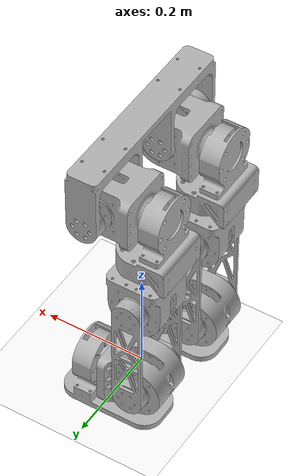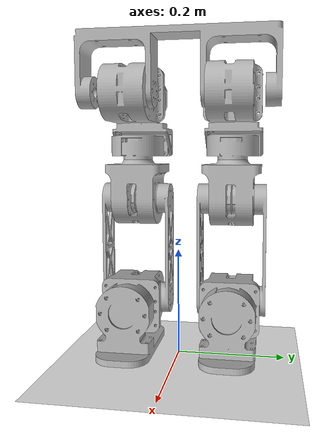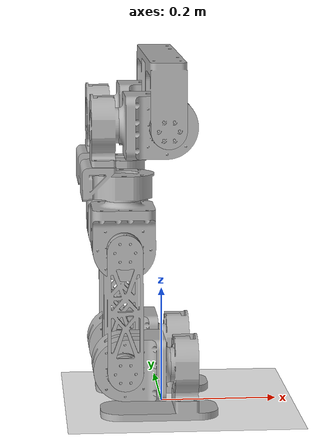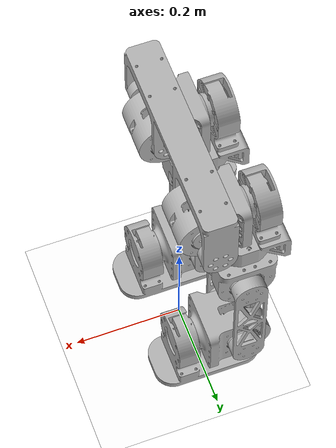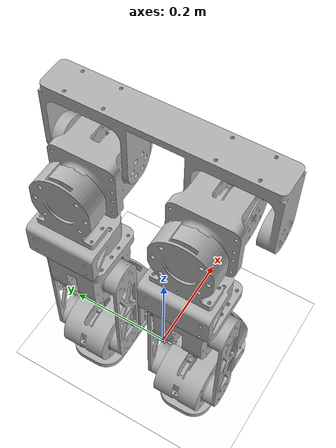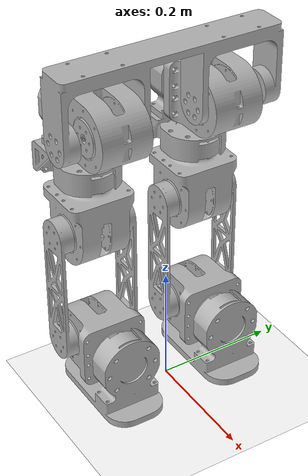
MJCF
<mujoco model="nemo scene">
  <include file="nemo4b_shift.xml"/>

  <statistic center="1 -0.8 1.1" extent=".3"/>

  <visual>
    <headlight diffuse="0.6 0.6 0.6" ambient="0.1 0.1 0.1" specular="0.9 0.9 0.9"/>
    <rgba haze="0.15 0.25 0.35 1"/>
    <global azimuth="140" elevation="-20"/>
  </visual>

  <asset>
    <texture type="skybox" builtin="gradient" rgb1="1 1 1" rgb2="1 1 1" width="800" height="800"/>
    <texture type="2d" name="groundplane" builtin="checker" mark="edge" rgb1="1 1 1" rgb2="1 1 1"
      markrgb="0 0 0" width="300" height="300"/>
    <material name="groundplane" texture="groundplane" texuniform="true" texrepeat="5 5" reflectance="0"/>
  </asset>

  <worldbody>
    <geom conaffinity="1" contype="1" condim="3" friction="1 .1 .1" name="floor" pos="0 0 0" size="40 40 0.125" type="plane" material="groundplane" rgba="0.5 0.5 0.5 1.0"/>
  </worldbody>
</mujoco>

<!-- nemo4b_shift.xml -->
<mujoco model="nemo4b">
<compiler angle="radian" meshdir="assets" autolimits="true" />

  <option timestep="0.0035" iterations="8" ls_iterations="4">
    <flag eulerdamp="disable" />
  </option>

  <custom>
        <numeric data="2500" name="constraint_limit_stiffness" />
        <numeric data="27000" name="constraint_stiffness" />
        <numeric data="30" name="constraint_ang_damping" />
        <numeric data="80" name="constraint_vel_damping" />
        <numeric data="-0.05" name="ang_damping" />
        <numeric data="0.5" name="joint_scale_pos" />
        <numeric data="0.1" name="joint_scale_ang" />
        <numeric data="0" name="spring_mass_scale" />
        <numeric data="1" name="spring_inertia_scale" />
        <numeric data="20" name="matrix_inv_iterations" />
        <numeric data="15" name="solver_maxls" />
  </custom>

  <visual>
    <global ellipsoidinertia="true" />
  </visual>
  <default>
    <geom contype="0" conaffinity="0" condim="3" solref="0.005 1" />
    <equality solref="0.005 1" />
    <default class="robot">
      <site rgba="1 0 0 1" size="0.01" group="5" />
      <default class="visual">
        <geom group="2" type="mesh" contype="0" conaffinity="0" density="0" material="metallic" />
      </default>
      <default class="collision">
        <geom conaffinity="1" contype="1" group="3" rgba="0.5 0.5 0.5 1" material="metallic" />
      </default>
    </default>
  </default>

  <asset>
    <material name="metallic" rgba="0.7 0.7 0.7 1" />
    <material name="black" rgba="0.2 0.2 0.2 1" />
    <material name="transparent" rgba="0 0 0 0" />

    <mesh file="pelvis.stl" />
    <mesh name="l_hip_pitch" file="l_hip_pitch.stl" />
    <mesh name="l_hip_roll" file="l_hip_roll.stl" />
    <mesh name="l_hip_yaw" file="l_hip_yaw.stl" />
    <mesh name="l_knee" file="l_knee.stl" />
    <mesh name="l_foot_pitch" file="l_foot_pitch.stl" />
    <mesh name="l_foot_roll" file="l_foot_roll.stl" />

    <mesh name="r_hip_pitch" file="l_hip_pitch.stl" scale="1 -1 1" />
    <mesh name="r_hip_roll" file="l_hip_roll.stl" scale="1 -1 1" />
    <mesh name="r_hip_yaw" file="l_hip_yaw.stl" scale="1 -1 1" />
    <mesh name="r_knee" file="l_knee.stl" scale="1 -1 1" />
    <mesh name="r_foot_pitch" file="l_foot_pitch.stl" scale="1 -1 1" />
    <mesh name="r_foot_roll" file="l_foot_roll.stl" scale="1 -1 1" />

  </asset>
<worldbody>
  <light name="spotlight" mode="targetbodycom" target="pelvis" pos="0 -6 4" cutoff="30" />
  <body name="pelvis" pos="0.0 0.0 0.6088" childclass="robot">
    <inertial pos="0.0 0.0 0.2" mass="5.11537484" fullinertia="0.03 0.03 0.03 0.0 0.0 0.0" />
    <freejoint name="floating_base" />
    <geom type="mesh" class="visual" mesh="pelvis" />
    <body name="l_hip_pitch" pos="0.0 0.0965 -0.112">
      <inertial pos="-0.01821923 -0.0 -3.205e-05" mass="1.8670971" fullinertia="0.00265583 0.00363357 0.00358009 -2e-07 -1.09e-06 -0.0" />
      <joint armature="0.005" damping="2" frictionloss="0.1" actuatorfrcrange="-47.4 47.4" name="l_hip_pitch" axis="0 1 0" range="-1.3 1.3" />
      <geom type="mesh" class="visual" mesh="l_hip_pitch" />
      <body name="l_hip_roll" pos="-0.07875 0.0 0.0">
        <inertial pos="-0.01740501 1.764e-05 -0.05845559" mass="2.00459959" fullinertia="0.0064706 0.00633136 0.00303949 4.7e-07 -0.00070962 9e-07" />
        <joint armature="0.005" damping="2" frictionloss="0.1" actuatorfrcrange="-23.7 23.7" name="l_hip_roll" axis="1 0 0" range="-0.4 1.5" />
        <geom type="mesh" class="visual" mesh="l_hip_roll" />
        <body name="l_hip_yaw" pos="0.00715 0.0 -0.1263">
          <inertial pos="3.205e-05 -0.0 -0.06053076999999999" mass="1.8670971" fullinertia="0.00358009 0.00363357 0.00265583 -0.0 -1.09e-06 -2e-07" />
          <joint armature="0.005" damping="2" frictionloss="0.1" actuatorfrcrange="-23.7 23.7" name="l_hip_yaw" axis="0 0 1" range="-1.0 1.0" />
          <geom type="mesh" class="visual" mesh="l_hip_yaw" />
          <body name="l_knee" pos="0.0 0.0 -0.07875">
            <inertial pos="0.0 5e-05 -0.10289321" mass="0.58007416" fullinertia="0.0070466 0.00513742 0.00225232 -0.0 0.0 -0.0" />
            <joint armature="0.005" damping="2" frictionloss="0.1" actuatorfrcrange="-47.4 47.4" name="l_knee" axis="0 1 0" range="-2 2" />
            <geom type="mesh" class="visual" mesh="l_knee" />
            <body name="l_foot_pitch" pos="0.0 0.0 -0.206">
              <inertial pos="0.01821923 -0.0 -3.205e-05" mass="1.8670971" fullinertia="0.00265583 0.00363357 0.00358009 -2e-07 1.09e-06 -0.0" />
              <joint armature="0.005" damping="2" frictionloss="0.1" actuatorfrcrange="-47.4 47.4" name="l_foot_pitch" axis="0 1 0" range="-2.0 2.0" />
              <geom type="mesh" class="visual" mesh="l_foot_pitch" />
              <body name="l_foot_roll" pos="0.07875 0.0 0.0">
                <inertial pos="0.00757956 1.139e-05 -0.03942379" mass="1.5526793" fullinertia="0.00385478 0.0054167 0.00391016 5.4e-07 0.0010808 3e-07" />
                <joint armature="0.005" damping="2" frictionloss="0.1" actuatorfrcrange="-23.7 23.7" name="l_foot_roll" axis="1 0 0" range="-1 1" />
                <geom type="mesh" class="visual" mesh="l_foot_roll" />
                <geom class="collision" name="left_foot" pos="-0.0187 0 -0.07975" size="0.1 0.0505 0.006" type="box" />
                <site name="left_foot_p1" pos="0.05 0.0 -0.08275" />
                <site name="left_foot_p2" pos="-0.05 0.0 -0.08275" />
                <site name="left_foot_p3" pos="0.0 0.05 -0.08275" />
              </body>
            </body>
          </body>
        </body>
      </body>
    </body>

    <body name="r_hip_pitch" pos="0.0 -0.0965 -0.112">
      <inertial pos="-0.01821923 -0.0 -3.205e-05" mass="1.8670971" fullinertia="0.00265583 0.00363357 0.00358009 -2e-07 -1.09e-06 -0.0" />
      <joint armature="0.005" damping="2" frictionloss="0.1" actuatorfrcrange="-47.4 47.4" name="r_hip_pitch" axis="0 1 0" range="-1.3 1.3" />
      <geom type="mesh" class="visual" mesh="r_hip_pitch" />
      <body name="r_hip_roll" pos="-0.07875 -0.0 0.0">
        <inertial pos="-0.01740501 1.764e-05 -0.05845559" mass="2.00459959" fullinertia="0.0064706 0.00633136 0.00303949 4.7e-07 -0.00070962 9e-07" />
        <joint armature="0.005" damping="2" frictionloss="0.1" actuatorfrcrange="-23.7 23.7" name="r_hip_roll" axis="1 0 0" range="-1.5 0.40" />
        <geom type="mesh" class="visual" mesh="r_hip_roll" />
        <body name="r_hip_yaw" pos="0.00715 -0.0 -0.1263">
          <inertial pos="3.205e-05 -0.0 -0.06053076999999999" mass="1.8670971" fullinertia="0.00358009 0.00363357 0.00265583 -0.0 -1.09e-06 -2e-07" />
          <joint armature="0.005" damping="2" frictionloss="0.1" actuatorfrcrange="-23.7 23.7" name="r_hip_yaw" axis="0 0 1" range="-1.0 1.0" />
          <geom type="mesh" class="visual" mesh="r_hip_yaw" />
          <body name="r_knee" pos="0.0 -0.0 -0.07875">
            <inertial pos="0.0 5e-05 -0.10289321" mass="0.58007416" fullinertia="0.0070466 0.00513742 0.00225232 -0.0 0.0 -0.0" />
            <joint armature="0.005" damping="2" frictionloss="0.1" actuatorfrcrange="-47.4 47.4" name="r_knee" axis="0 1 0" range="-2 2" />
            <geom type="mesh" class="visual" mesh="l_knee" />
            <body name="r_foot_pitch" pos="0.0 -0.0 -0.206">
              <inertial pos="0.01821923 -0.0 -3.205e-05" mass="1.8670971" fullinertia="0.00265583 0.00363357 0.00358009 -2e-07 1.09e-06 -0.0" />
              <joint armature="0.005" damping="2" frictionloss="0.1" actuatorfrcrange="-47.4 47.4" name="r_foot_pitch" axis="0 1 0" range="-2.0 2.0" />
              <geom type="mesh" class="visual" mesh="l_foot_pitch" />
              <body name="r_foot_roll" pos="0.07875 -0.0 0.0">
                <inertial pos="0.00757956 1.139e-05 -0.03942379" mass="1.5526793" fullinertia="0.00385478 0.0054167 0.00391016 5.4e-07 0.0010808 3e-07" />
                <joint armature="0.005" damping="2" frictionloss="0.1" actuatorfrcrange="-23.7 23.7" name="r_foot_roll" axis="1 0 0" range="-1 1" />
                <geom type="mesh" class="visual" mesh="l_foot_roll" />
                <geom class="collision" name="right_foot" pos="-0.0187 0 -0.07975" size="0.1 0.0505 0.006" type="box" />
                <site name="right_foot_p1" pos="0.05 0.0 -0.08275" />
                <site name="right_foot_p2" pos="-0.05 0.0 -0.08275" />
                <site name="right_foot_p3" pos="0.0 -0.05 -0.08275" />
              </body>
            </body>
          </body>
        </body>
      </body>
    </body>
    <site name="pelvis_back" pos="-0.05 0.0 0.0" />
    <site name="pelvis_front" pos="0.05 0.0 0.0" />
    <site name="head" pos="0.0 0.0 0.5" />
    <site name="imu_in_pelvis" size="0.01" pos="0.0 0.0 0.0" />
    <light name="tracking" mode="trackcom" pos="0 0 2" />
  </body>
</worldbody>
<actuator>

  <position kp="50.0" class="robot" name="l_hip_pitch" joint="l_hip_pitch" inheritrange="1"/>
  <position kp="40.0" class="robot" name="l_hip_roll" joint="l_hip_roll" inheritrange="1"/>
  <position kp="40.0" class="robot" name="l_hip_yaw" joint="l_hip_yaw" inheritrange="1"/>
  <position kp="50.0" class="robot" name="l_knee" joint="l_knee" inheritrange="1"/>
  <position kp="50.0" class="robot" name="l_foot_pitch" joint="l_foot_pitch" inheritrange="1"/>
  <position kp="40.0" class="robot" name="l_foot_roll" joint="l_foot_roll" inheritrange="1"/>

  <position kp="50.0" class="robot" name="r_hip_pitch" joint="r_hip_pitch" inheritrange="1"/>
  <position kp="40.0" class="robot" name="r_hip_roll" joint="r_hip_roll" inheritrange="1"/>
  <position kp="40.0" class="robot" name="r_hip_yaw" joint="r_hip_yaw" inheritrange="1"/>
  <position kp="50.0" class="robot" name="r_knee" joint="r_knee" inheritrange="1"/>
  <position kp="50.0" class="robot" name="r_foot_pitch" joint="r_foot_pitch" inheritrange="1"/>
  <position kp="40.0" class="robot" name="r_foot_roll" joint="r_foot_roll" inheritrange="1"/>

  <velocity kv="4" class="robot" name="l_hip_pitch_v" joint="l_hip_pitch"/>
  <velocity kv="2" class="robot" name="l_hip_roll_v" joint="l_hip_roll"/>
  <velocity kv="2" class="robot" name="l_hip_yaw_v" joint="l_hip_yaw"/>
  <velocity kv="4" class="robot" name="l_knee_v" joint="l_knee"/>
  <velocity kv="4" class="robot" name="l_foot_pitch_v" joint="l_foot_pitch"/>
  <velocity kv="2" class="robot" name="l_foot_roll_v" joint="l_foot_roll"/>

  <velocity kv="4" class="robot" name="r_hip_pitch_v" joint="r_hip_pitch"/>
  <velocity kv="2" class="robot" name="r_hip_roll_v" joint="r_hip_roll"/>
  <velocity kv="2" class="robot" name="r_hip_yaw_v" joint="r_hip_yaw"/>
  <velocity kv="4" class="robot" name="r_knee_v" joint="r_knee"/>
  <velocity kv="4" class="robot" name="r_foot_pitch_v" joint="r_foot_pitch"/>
  <velocity kv="2" class="robot" name="r_foot_roll_v" joint="r_foot_roll"/>
</actuator>

<keyframe>
    <key name="stand" qpos="       0 0 0.5793       1 0 0 0       -0.698132 0 0 1.22173 -0.523599 0       -0.698132 0 0 1.22173 -0.523599 0       " />
</keyframe>

<sensor>
    <velocimeter site="imu_in_pelvis" name="local_linvel_pelvis" />
    <accelerometer site="imu_in_pelvis" name="accelerometer_pelvis" />
    <gyro site="imu_in_pelvis" name="gyro_pelvis" />
</sensor>

</mujoco>
